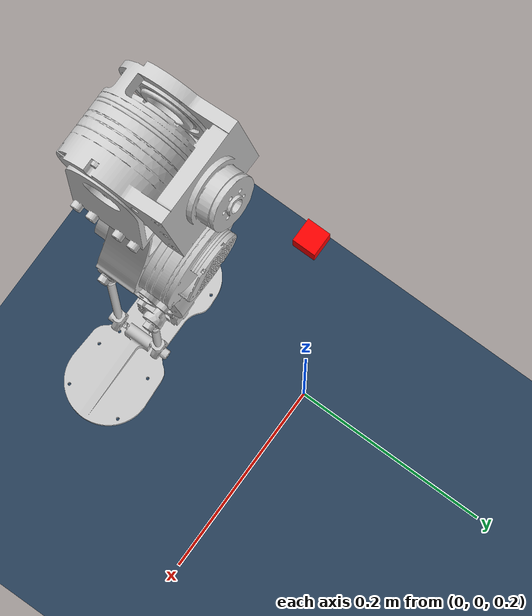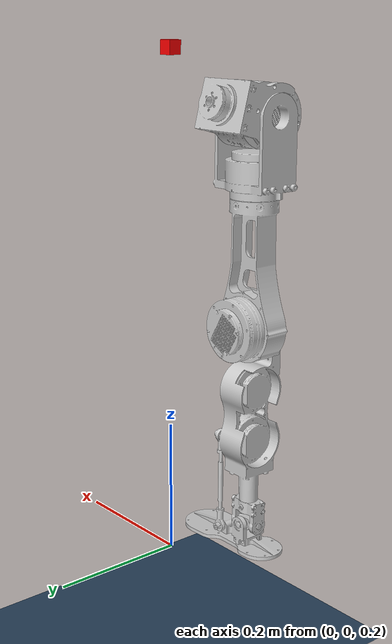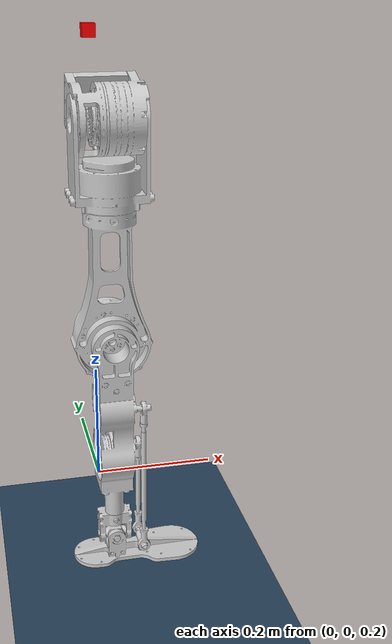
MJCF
<mujoco model="scene">
<include file="right_leg_6dof.xml"/>

<statistic center="0.4 0 0.8" extent="0.8"/>

<visual>
  <headlight diffuse="0.6 0.6 0.6" ambient="0.3 0.3 0.3" specular="0 0 0"/>
  <rgba haze="0.15 0.25 0.35 1"/>
  <global azimuth="150" elevation="-20"/>
</visual>

<asset>
  <texture type="skybox" builtin="gradient" rgb1="0.3 0.5 0.7" rgb2="0 0 0" width="512" height="3072"/>
  <texture type="2d" name="groundplane" builtin="checker" mark="edge" rgb1="0.2 0.3 0.4" rgb2="0.1 0.2 0.3"
           markrgb="0.8 0.8 0.8" width="300" height="300"/>
  <material name="groundplane" texture="groundplane" texuniform="true" texrepeat="5 5" reflectance="0.2"/>
  <texture name="block" type="2d" file="block.png"/>
  <material name="block" texture="block" reflectance="0"  />
</asset>

<worldbody>
  <light pos="0 0 1.5" dir="0 0 -1" directional="true"/>
  <geom name="floor" size="0 0 1" pos="0 0 0" type="plane" material="groundplane"/>
</worldbody>
</mujoco>

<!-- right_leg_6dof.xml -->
<mujoco model="Bipedal_Final_RightLeg">
    <option gravity="0 0 -9.81" />
    <compiler angle="degree" meshdir="meshes/" autolimits="true" />
    <!-- discardvisual="True"  -->

    <option timestep="0.001"></option>
    <statistic extent="0.3" center="0.3 0 0" meansize=".03" />

    <default>
        <geom type="mesh" />
    </default>
    <default>
        <default class="visual">
            <geom contype="0" conaffinity="0" group="0" density="0" rgba="0.8 0.8 0.8 1" />
        </default>
        <default class="transparent">
            <geom contype="0" conaffinity="0" group="0" density="0" rgba="0.5 0.5 0.5 0.3" />
        </default>

        <default class="collision">
            <geom group="3" />
            <default class="foot1">
                <geom size="0.09 0.03 0.006" pos="0.04 0 -0.034" type="box" contype="1"
                    conaffinity="1" />
                <site size="0.09 0.03 0.006" pos="0.04 0 -0.034" type="box" />
            </default>
            <default class="foot2">
                <geom size="0.027 0.0325" pos="0 9.61687e-05 0.0388277" type="cylinder" />
            </default>
        </default>

    </default>

    <default>
        <default class="AK8064_actuator">
            <joint damping="0.0" armature="0.0" frictionloss="0.0" />
        </default>

        <default class="AK7010_actuator">
            <joint damping="0.0" armature="0.0" frictionloss="0.0" />
        </default>

        <default class="AK109_actuator">
            <joint damping="0.0" armature="0.0" frictionloss="0.0" />
        </default>

        <default class="AK606_actuator">
            <joint damping="0.0" armature="0.0" frictionloss="0.0" />
        </default>
    </default>

    <!--   Fusion outputs meshes with mm units by default, but must be converted to m in MuJoCo, hence
    the scaling   -->
    <asset>
        <!--   Torso  -->
        <mesh name="link0_torso" file="link0_torso.stl" scale="0.001 0.001 0.001" />

        <!--   Right stl file  -->
        <mesh name="right_hip_pitch_link" file="right_hip_pitch_link.stl" scale="0.001 0.001 0.001" />
        <mesh name="right_hip_roll_link" file="right_hip_roll_link.stl" scale="0.001 0.001 0.001" />
        <mesh name="right_hip_yaw_link" file="right_hip_yaw_link.stl" scale="0.001 0.001 0.001" />
        <mesh name="right_knee_link" file="right_knee_link.stl" scale="0.001 0.001 0.001" />
        <mesh name="right_ankle_roll_link" file="right_ankle_roll_link.stl" scale="0.001 0.001 0.001" />
        <mesh name="right_ankle_pitch_link" file="right_ankle_pitch_link.stl" scale="0.001 0.001 0.001" />

    </asset>

    <worldbody>
        <!--   Link0_Torso -->
        <body name="link0_torso" pos="0 0 0.95" euler="0 0 0">
            <geom type="mesh" class="visual" mesh="link0_torso" />
            <inertial pos="0.022E-3 0.011E-3 -9.359E-3" mass="5.721" fullinertia="1.338E-1 1.019E-1 6.278E-2 -7542.256E-9 8599.288E-9 8566.243E-9"/>
            <camera name="track" pos="1 0 1.5" xyaxes="0.78 -0.63 0 0.27 0.33 0.9"/>
            <site name="torso_imu" type = "box" pos="0.0 0 0.0" euler="0 0 0" size="0.01 0.01 0.01" rgba="1 0 0 1"/>

            <!--   Right leg kinematic chain  -->
            <body name="right_hip_pitch_link" pos="0 -89.761E-3 -81.437E-3" euler="15 0 0">
                <joint type="hinge" name="right_hip_pitch_joint" axis="0 1 0" pos="0 0 0" range="-60 60" class = "AK109_actuator"/>
                <geom type="mesh" class="visual" mesh="right_hip_pitch_link" />
                <inertial pos="5.579E-3 -59.77E-3 0.581E-3" mass="1.764" fullinertia="3.245E-3 2.285E-3 3.417E-3 1.478E-4 5415.03E-9 -1738.735E-9" />

                    <body name="right_hip_roll_link" pos="0 -75E-3 0" euler="-15 0 0">
                        <joint type="hinge" name="right_hip_roll_joint" axis="1 0 0" pos="0 0 0" ref="0" range="-60 35" class = "AK109_actuator"/>
                        <geom type="mesh" class="visual" mesh="right_hip_roll_link" />
                        <inertial pos="0.016E-3 -0.136E-3 -73.241E-3" mass="1.2918" fullinertia="2.359E-3 3.153E-3 1.975E-3 -927.06E-9 -3429.47E-9 -927.06E-9" />

                            <body name="right_hip_yaw_link" pos="0 0 -120.5E-3" euler="0 0 0">
                                <joint type="hinge" name="right_hip_yaw_joint" axis="0 0 1" pos="0 0 0" range="-45 45" class = "AK109_actuator"/>
                                <geom type="mesh" class="visual" mesh="right_hip_yaw_link" />
                                <inertial pos="-0.029E-3 13.844E-3 -165.473E-3" mass="1.983" fullinertia="1.164E-2 1.208E-2 2.009E-3 2389.96E-9 -1032.992E-9 9.596E-4" />

                                <body name="right_knee_link" pos="0 0 -203.5E-3" euler="0 0 0">
                                    <joint type="hinge" name="right_knee_pitch_joint" axis="0 1 0" pos="0 0 0" range="-10 120" class = "AK109_actuator"/>
                                    <geom type="mesh" class="visual" mesh="right_knee_link" />
                                    <inertial pos="9.336E-3 -3.761E-3 -163.038E-3" mass="1.879" fullinertia="1.653E-2 1.633E-2 1.480E-3 -35348.501E-9 7.738E-4 8.795E-4" />

                                    <body name="right_ankle_roll_link" pos="0 0 -335E-3" euler="0 0 0">
                                        <joint type="hinge" name="right_ankle_roll_joint" axis="1 0 0" pos="0 0 0" range="-15 15" class = "AK606_actuator"/>
                                        <geom type="mesh" class="visual" mesh="right_ankle_roll_link" />
                                        <inertial pos="0 0 0" mass="40.313E-3" fullinertia="7009E-9 3498.104E-9 5125.014E-9 0 0 0" />

                                        <body name="right_ankle_pitch_link" pos="0 0 0" euler="0 0 0">
                                            <joint type="hinge" name="right_ankle_pitch_joint" axis="0 1 0" pos="0 0 0" range="-30 30" class = "AK606_actuator"/>
                                            <geom type="mesh" name = "Right_Foot" friction="5.0 0.1 0.1" class="visual" mesh="right_ankle_pitch_link" />
                                            <inertial pos="29.106E-3 0 -30.483E-3" mass="343.229E-3" fullinertia="1.546E-4 8.770E-4 9.434E-4 -9.97E-9 50230.908E-9 40.36E-9" />
                                            <!-- This geom is for collision -->
                                            <geom name="r_foot1" class="foot1" />
                                        </body>
                                    </body>
                                </body>
                            </body>
                    </body>
            </body>
        </body>
        <!--   End of right leg  -->
    </worldbody>

    <actuator>
        <motor name="Mright_hip_pitch_joint" joint="right_hip_pitch_joint" gear ="1" ctrlrange="-48 48" />
        <motor name="Mright_hip_roll_joint" joint="right_hip_roll_joint" gear ="1" ctrlrange="-48 48" />
        <motor name="Mright_hip_yaw_joint" joint="right_hip_yaw_joint" gear ="1" ctrlrange="-16 16" />
        <motor name="Mright_knee_pitch_joint" joint="right_knee_pitch_joint" gear ="1" ctrlrange="-48 48" />
        <motor name="Mright_ankle_roll_joint" joint="right_ankle_roll_joint" gear ="1" ctrlrange="-18 18" />
        <motor name="Mright_ankle_pitch_joint" joint="right_ankle_pitch_joint" gear ="1" ctrlrange="-18 18" />
    </actuator>

    <sensor>
        <framequat name="torso_quat" objtype="site" objname="torso_imu" />
        <accelerometer name="torso_accel" site="torso_imu"/>
        <gyro name="torso_gyro" site="torso_imu"/>
    </sensor>
</mujoco>
